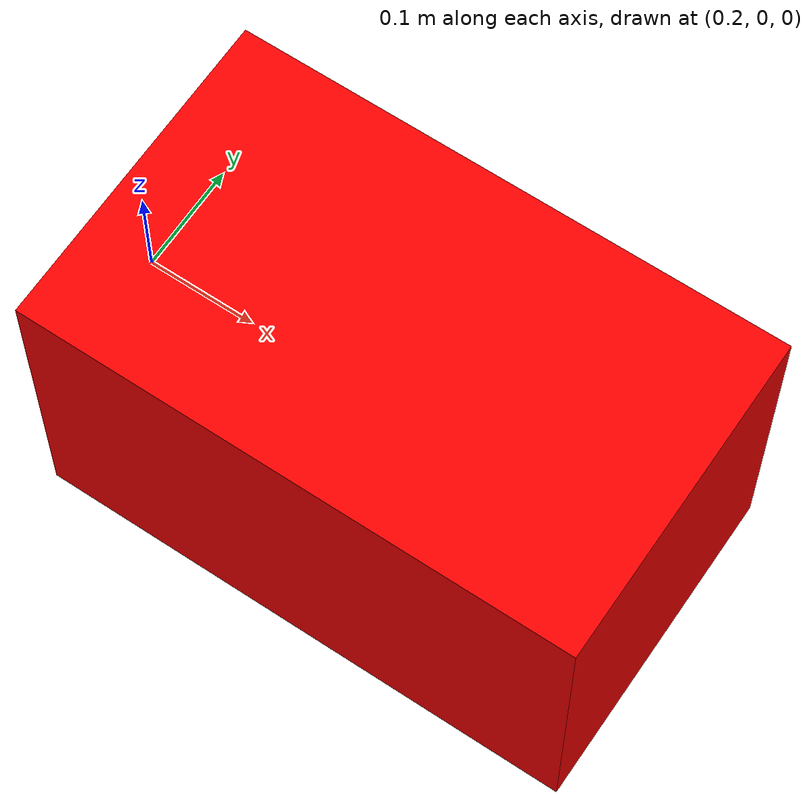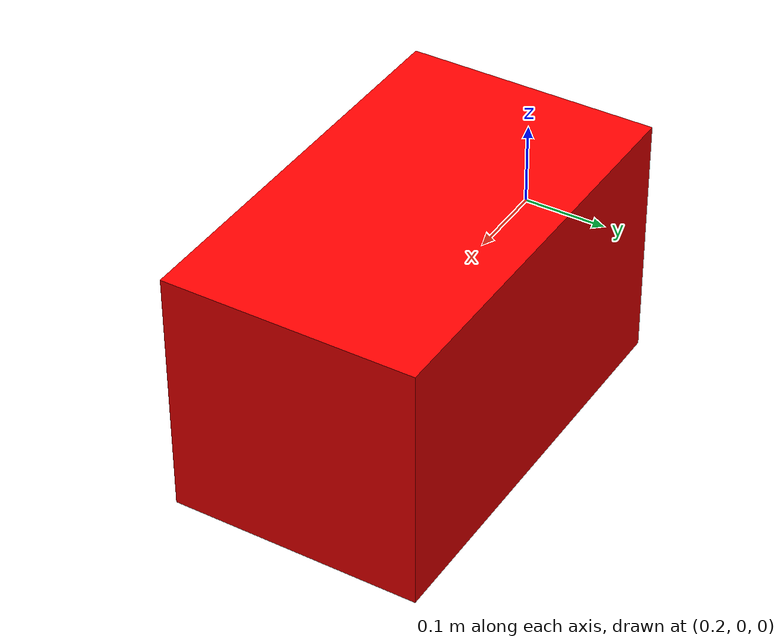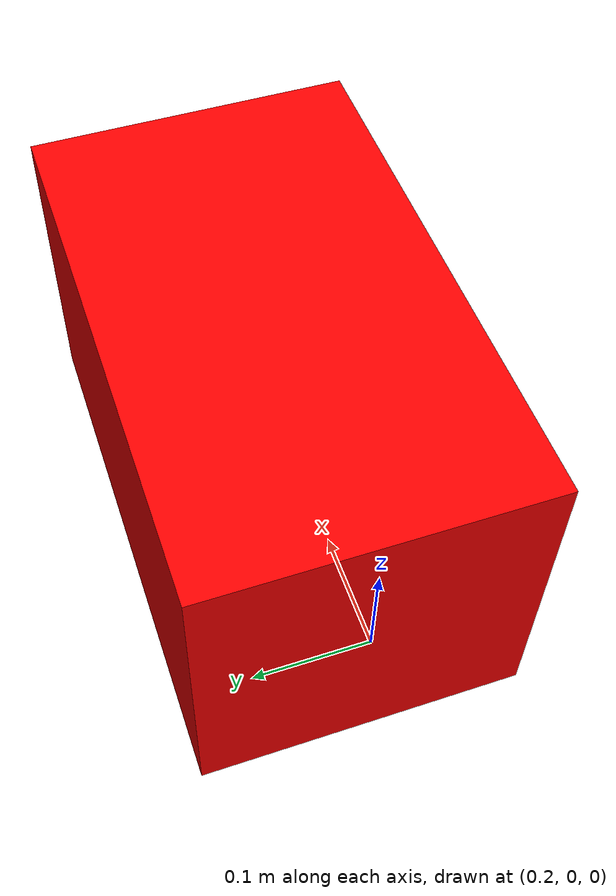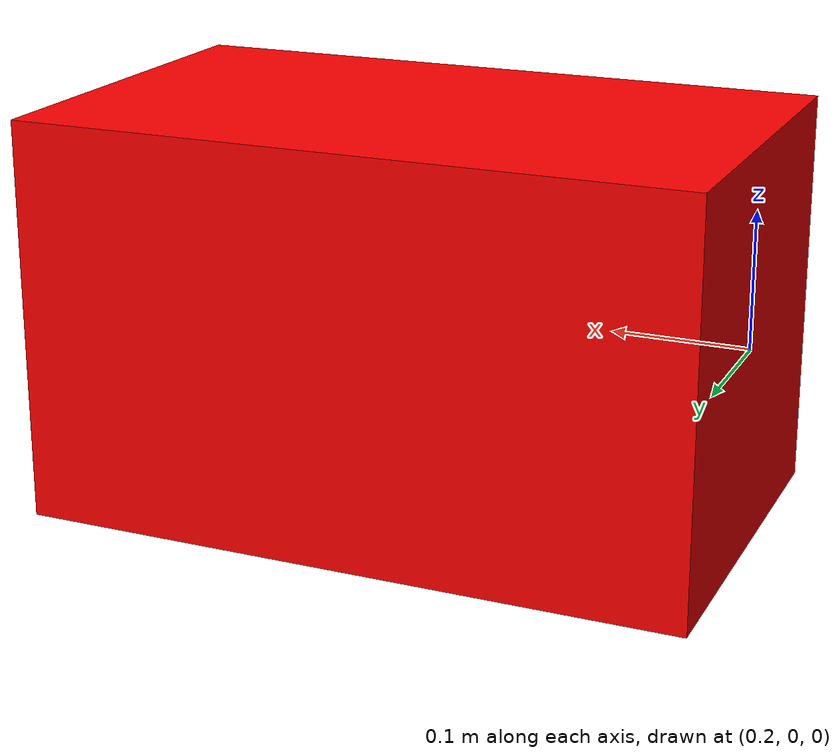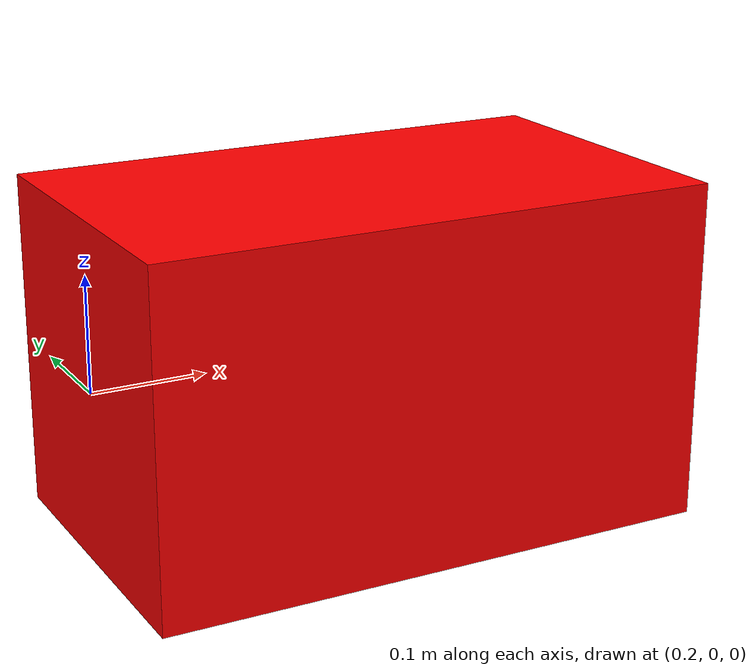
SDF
<?xml version='1.0'?>
<sdf version='1.6'>
  <model name='payload_box'>

    <link name='payload_weight'>
      <pose frame=''>0.44572 0 0 0 0 0</pose>
      <inertial>
        <mass>5.0</mass>
        <inertia>
          <ixx>0.0747</ixx>
          <ixy>0.0</ixy>
          <ixz>0.0</ixz>
          <iyy>0.1411</iyy>
          <iyz>0.0</iyz>
          <izz>0.1411</izz>
        </inertia>
      </inertial>
      <collision name="collision">
        <geometry>
          <box>
            <size>0.5 0.3 0.3</size>
          </box>
        </geometry>
      </collision>
      <visual name="visual">
        <geometry>
          <box>
            <size>0.5 0.3 0.3</size>
          </box>
        </geometry>
          <material>
            <ambient>1 0 0 1</ambient>
            <diffuse>1 0 0 1</diffuse>
            <specular>0.1 0.1 0.1 1</specular>
            <emissive>0 0 0 0</emissive>
          </material>
      </visual>
      <self_collide>1</self_collide>
    </link>
 </model>
</sdf>
